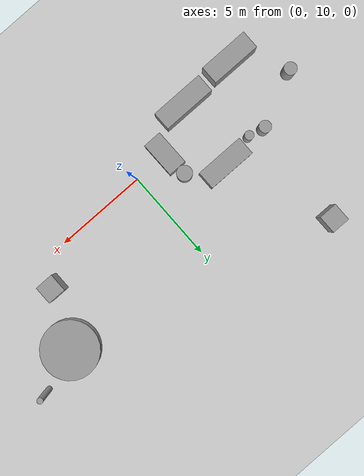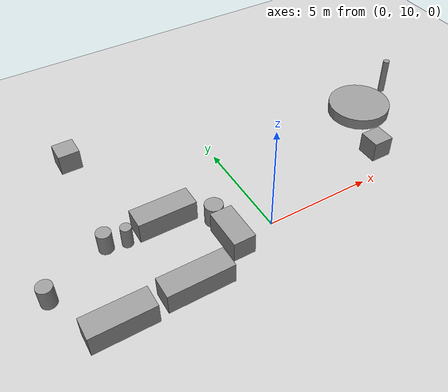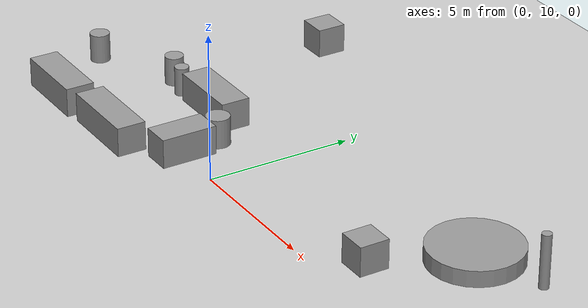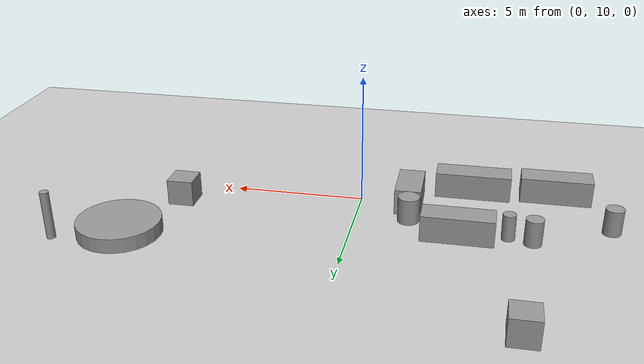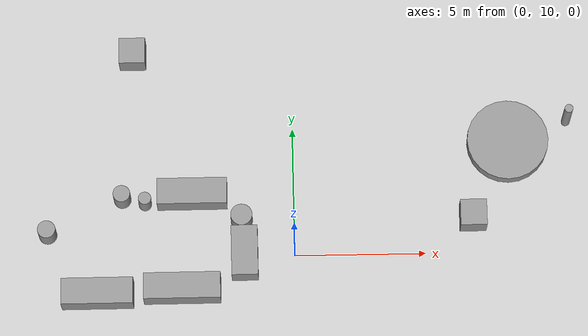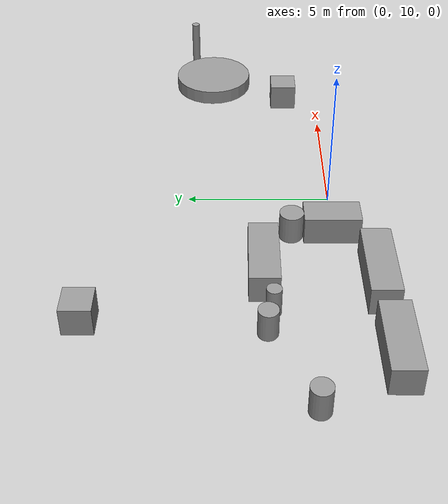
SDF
<sdf version="1.6">
 <world name="world">
  <gravity>0 0 -9.8</gravity>
  <physics name="default_physics" default="0" type="ode">
   <max_step_size>0.001</max_step_size>
   <real_time_factor>1</real_time_factor>
   <real_time_update_rate>1000</real_time_update_rate>
  </physics>
  <scene><ambient>0.6 0.6 0.6 1</ambient><background>0.4 0.4 0.4 1</background><shadows>0</shadows></scene>
  <light name="sun" type="directional">
   <pose>0 0 10 0 -0 0</pose>
   <diffuse>0.8 0.8 0.8 1</diffuse>
   <specular>0.2 0.2 0.2 1</specular>
   <attenuation>
    <range>1000</range>
    <constant>0.9</constant>
    <linear>0.01</linear>
    <quadratic>0.001</quadratic>
   </attenuation>
   <direction>-0.5 0.1 -0.9</direction>
   <spot><inner_angle>0</inner_angle><outer_angle>0</outer_angle><falloff>0</falloff></spot>
  </light>
  <model name="ground_plane">
   <static>1</static>
   <link name="link">
    <collision name="collision">
     <geometry><plane><normal>0 0 1</normal><size>100 100</size></plane></geometry>
     <surface><friction><ode><mu>100</mu><mu2>50</mu2></ode></friction></surface>
    </collision>
    <visual name="visual">
     <cast_shadows>0</cast_shadows>
     <geometry><plane><normal>0 0 1</normal><size>100 100</size></plane></geometry>
     <material>
      <script><uri>file://media/materials/scripts/gazebo.material</uri><name>Gazebo/Grey</name></script>
     </material>
    </visual>
   </link>
   <pose>0 0 -0.1 0 -0 0</pose>
  </model>
  <magnetic_field>6e-06 2.3e-05 -4.2e-05</magnetic_field>
  <atmosphere type="adiabatic"/>
  <spherical_coordinates>
   <surface_model>EARTH_WGS84</surface_model>
   <latitude_deg>0</latitude_deg>
   <longitude_deg>0</longitude_deg>
   <elevation>0</elevation>
   <heading_deg>0</heading_deg>
  </spherical_coordinates>
  <audio><device>default</device></audio>
  <model name="unit_box_0">
   <pose>6.81181 11.3527 0.5 -0 -0 -0</pose>
   <link name="link">
    <inertial>
     <mass>1</mass>
     <inertia>
      <ixx>0.166667</ixx>
      <ixy>0</ixy>
      <ixz>0</ixz>
      <iyy>0.166667</iyy>
      <iyz>0</iyz>
      <izz>0.166667</izz>
     </inertia>
    </inertial>
    <collision name="collision"><geometry><box><size>1 1 1</size></box></geometry></collision>
    <visual name="visual">
     <geometry><box><size>1 1 1</size></box></geometry>
     <material>
      <script><name>Gazebo/Grey</name><uri>file://media/materials/scripts/gazebo.material</uri></script>
     </material>
    </visual>
   </link>
  </model>
  <model name="unit_cylinder_0_clone">
   <pose>8.22763 14.295 0.274943 1e-06 -0 0.006476</pose>
   <link name="link">
    <inertial>
     <mass>1</mass>
     <inertia><ixx>0.145833</ixx><ixy>0</ixy><ixz>0</ixz><iyy>0.145833</iyy><iyz>0</iyz><izz>0.125</izz></inertia>
    </inertial>
    <collision name="collision">
     <geometry><cylinder><radius>1.55147</radius><length>0.54989</length></cylinder></geometry>
    </collision>
    <visual name="visual">
     <geometry><cylinder><radius>1.55147</radius><length>0.54989</length></cylinder></geometry>
     <material>
      <script><name>Gazebo/Grey</name><uri>file://media/materials/scripts/gazebo.material</uri></script>
     </material>
    </visual>
   </link>
  </model>
  <model name="unit_cylinder_0_clone_clone">
   <pose>10.5073 15.1178 0.909278 -8e-06 -1.6e-05 0.015975</pose>
   <link name="link">
    <inertial>
     <mass>1</mass>
     <inertia><ixx>0.145833</ixx><ixy>0</ixy><ixz>0</ixz><iyy>0.145833</iyy><iyz>0</iyz><izz>0.125</izz></inertia>
    </inertial>
    <collision name="collision">
     <geometry><cylinder><radius>0.161138</radius><length>1.81855</length></cylinder></geometry>
    </collision>
    <visual name="visual">
     <geometry><cylinder><radius>0.161138</radius><length>1.81855</length></cylinder></geometry>
     <material>
      <script><name>Gazebo/Grey</name><uri>file://media/materials/scripts/gazebo.material</uri></script>
     </material>
    </visual>
   </link>
  </model>
  <model name="unit_box_5">
   <pose>-6.109 18.0175 0.500276 0 0 -1.9e-05</pose>
   <link name="link">
    <inertial>
     <mass>1</mass>
     <inertia>
      <ixx>0.166667</ixx>
      <ixy>0</ixy>
      <ixz>0</ixz>
      <iyy>0.166667</iyy>
      <iyz>0</iyz>
      <izz>0.166667</izz>
     </inertia>
    </inertial>
    <collision name="collision"><geometry><box><size>1 0.999999 1</size></box></geometry></collision>
    <visual name="visual">
     <geometry><box><size>1 0.999999 1</size></box></geometry>
     <material>
      <script><name>Gazebo/Grey</name><uri>file://media/materials/scripts/gazebo.material</uri></script>
     </material>
    </visual>
   </link>
  </model>
  <model name="unit_box">
   <pose>-7.46839 8.57163 0.499999 6e-06 0 0.000281</pose>
   <link name="link">
    <inertial>
     <mass>1</mass>
     <inertia>
      <ixx>0.166667</ixx>
      <ixy>0</ixy>
      <ixz>0</ixz>
      <iyy>0.166667</iyy>
      <iyz>0</iyz>
      <izz>0.166667</izz>
     </inertia>
    </inertial>
    <collision name="collision"><geometry><box><size>2.7149 1 1</size></box></geometry></collision>
    <visual name="visual">
     <geometry><box><size>2.7149 1 1</size></box></geometry>
     <material>
      <script><name>Gazebo/Grey</name><uri>file://media/materials/scripts/gazebo.material</uri></script>
     </material>
    </visual>
   </link>
  </model>
  <model name="unit_cylinder">
   <pose>-6.53279 12.3234 0.5 1e-06 2e-06 0.000121</pose>
   <link name="link">
    <inertial>
     <mass>1</mass>
     <inertia><ixx>0.145833</ixx><ixy>0</ixy><ixz>0</ixz><iyy>0.145833</iyy><iyz>0</iyz><izz>0.125</izz></inertia>
    </inertial>
    <collision name="collision">
     <geometry><cylinder><radius>0.325512</radius><length>1</length></cylinder></geometry>
    </collision>
    <visual name="visual">
     <geometry><cylinder><radius>0.325512</radius><length>1</length></cylinder></geometry>
     <material>
      <script><name>Gazebo/Grey</name><uri>file://media/materials/scripts/gazebo.material</uri></script>
     </material>
    </visual>
   </link>
  </model>
  <model name="unit_box_1">
   <pose>-4.26947 8.72084 0.499997 -7e-06 -3e-06 0.000647</pose>
   <link name="link">
    <inertial>
     <mass>1</mass>
     <inertia>
      <ixx>0.166667</ixx>
      <ixy>0</ixy>
      <ixz>0</ixz>
      <iyy>0.166667</iyy>
      <iyz>0</iyz>
      <izz>0.166667</izz>
     </inertia>
    </inertial>
    <collision name="collision"><geometry><box><size>2.9052 1 1</size></box></geometry></collision>
    <visual name="visual">
     <geometry><box><size>2.9052 1 1</size></box></geometry>
     <material>
      <script><name>Gazebo/Grey</name><uri>file://media/materials/scripts/gazebo.material</uri></script>
     </material>
    </visual>
   </link>
  </model>
  <model name="unit_box_2">
   <pose>-3.8641 12.3957 0.5 -1e-06 -0 0.000193</pose>
   <link name="link">
    <inertial>
     <mass>1</mass>
     <inertia>
      <ixx>0.166667</ixx>
      <ixy>0</ixy>
      <ixz>0</ixz>
      <iyy>0.166667</iyy>
      <iyz>0</iyz>
      <izz>0.166667</izz>
     </inertia>
    </inertial>
    <collision name="collision"><geometry><box><size>2.65242 1 1</size></box></geometry></collision>
    <visual name="visual">
     <geometry><box><size>2.65242 1 1</size></box></geometry>
     <material>
      <script><name>Gazebo/Grey</name><uri>file://media/materials/scripts/gazebo.material</uri></script>
     </material>
    </visual>
   </link>
  </model>
  <model name="unit_cylinder_0">
   <pose>-5.66138 12.1265 0.50488 0.00201 0.020307 -0.003912</pose>
   <link name="link">
    <inertial>
     <mass>1</mass>
     <inertia><ixx>0.145833</ixx><ixy>0</ixy><ixz>0</ixz><iyy>0.145833</iyy><iyz>0</iyz><izz>0.125</izz></inertia>
    </inertial>
    <collision name="collision">
     <geometry><cylinder><radius>0.244285</radius><length>1</length></cylinder></geometry>
    </collision>
    <visual name="visual">
     <geometry><cylinder><radius>0.244285</radius><length>1</length></cylinder></geometry>
     <material>
      <script><name>Gazebo/Grey</name><uri>file://media/materials/scripts/gazebo.material</uri></script>
     </material>
    </visual>
   </link>
  </model>
  <model name="unit_box_3">
   <pose>-1.89399 10.0451 0.499996 0 8e-06 0.005935</pose>
   <link name="link">
    <inertial>
     <mass>1</mass>
     <inertia>
      <ixx>0.166667</ixx>
      <ixy>0</ixy>
      <ixz>0</ixz>
      <iyy>0.166667</iyy>
      <iyz>0</iyz>
      <izz>0.166667</izz>
     </inertia>
    </inertial>
    <collision name="collision"><geometry><box><size>1 1.92254 1</size></box></geometry></collision>
    <visual name="visual">
     <geometry><box><size>1 1.92254 1</size></box></geometry>
     <material>
      <script><name>Gazebo/Grey</name><uri>file://media/materials/scripts/gazebo.material</uri></script>
     </material>
    </visual>
   </link>
  </model>
  <model name="unit_cylinder_1">
   <pose>-1.99292 11.417 0.49999 0 0 -0.0053</pose>
   <link name="link">
    <inertial>
     <mass>1</mass>
     <inertia><ixx>0.145833</ixx><ixy>0</ixy><ixz>0</ixz><iyy>0.145833</iyy><iyz>0</iyz><izz>0.125</izz></inertia>
    </inertial>
    <collision name="collision">
     <geometry><cylinder><radius>0.411185</radius><length>1</length></cylinder></geometry>
    </collision>
    <visual name="visual">
     <geometry><cylinder><radius>0.411185</radius><length>1</length></cylinder></geometry>
     <material>
      <script><name>Gazebo/Grey</name><uri>file://media/materials/scripts/gazebo.material</uri></script>
     </material>
    </visual>
   </link>
  </model>
  <model name="unit_cylinder_2">
   <pose>-9.3778 10.9806 0.5 -1e-06 -1e-06 0.000235</pose>
   <link name="link">
    <inertial>
     <mass>1</mass>
     <inertia><ixx>0.145833</ixx><ixy>0</ixy><ixz>0</ixz><iyy>0.145833</iyy><iyz>0</iyz><izz>0.125</izz></inertia>
    </inertial>
    <collision name="collision">
     <geometry><cylinder><radius>0.340222</radius><length>1</length></cylinder></geometry>
    </collision>
    <visual name="visual">
     <geometry><cylinder><radius>0.340222</radius><length>1</length></cylinder></geometry>
     <material>
      <script><name>Gazebo/Grey</name><uri>file://media/materials/scripts/gazebo.material</uri></script>
     </material>
    </visual>
   </link>
  </model>
 </world>
</sdf>
